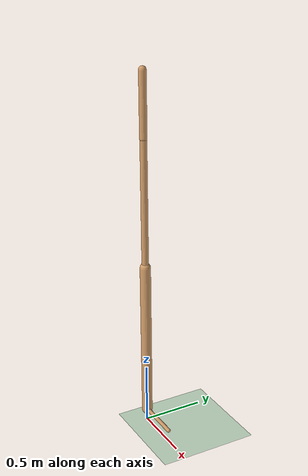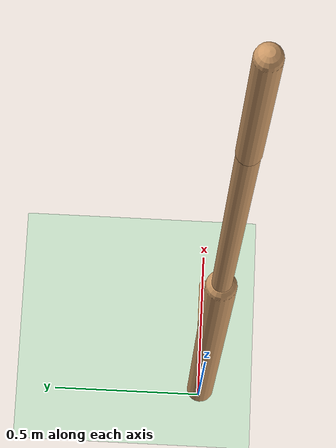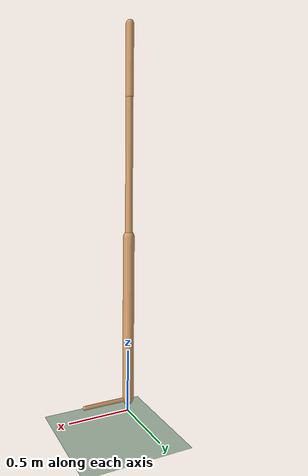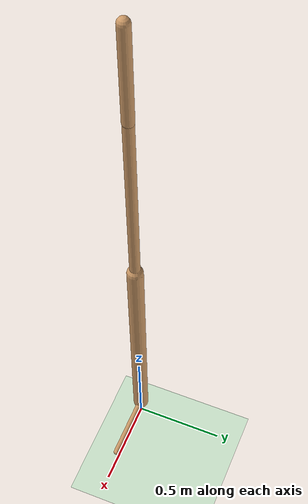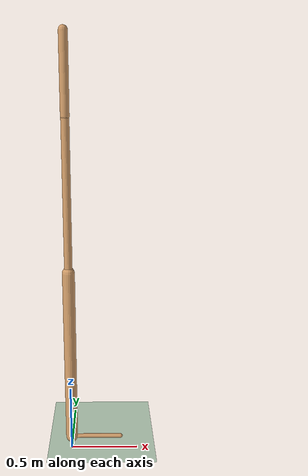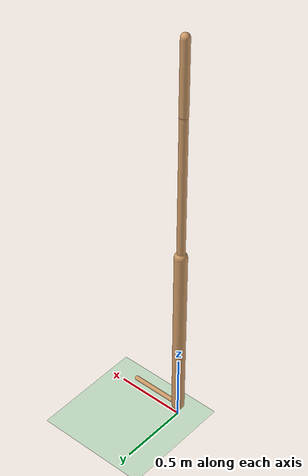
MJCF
<mujoco model="walker2d">
  <compiler angle="degree" inertiafromgeom="true" />
  <default>
    <joint armature="0.01" damping=".1" limited="true" />
    <geom conaffinity="0" condim="3" contype="1" density="1000" friction=".7 .1 .1" rgba="0.8 0.6 .4 1" />
  </default>
  <option integrator="RK4" timestep="0.002" />
  <worldbody>
    <light cutoff="100" diffuse="1 1 1" dir="-0 0 -1.3" directional="true" exponent="1" pos="0 0 1.3" specular=".1 .1 .1" />
    <geom conaffinity="1" condim="3" name="floor" pos="0 0 0" rgba="0.8 0.9 0.8 1" size="40 40 40" type="plane" material="MatPlane" />
    <body name="torso" pos="0 0 2.7215056478977204">
      <camera name="track" mode="trackcom" pos="0 -5 -1.25" xyaxes="1 0 0 0 0 1" />
      <joint armature="0" axis="1 0 0" damping="0" limited="false" name="rootx" pos="0 0 -1.25" stiffness="0" type="slide" />
      <joint armature="0" axis="0 0 1" damping="0" limited="false" name="rootz" pos="0 0 -1.25" ref="1.25" stiffness="0" type="slide" />
      <joint armature="0" axis="0 1 0" damping="0" limited="false" name="rooty" pos="0 0 0" stiffness="0" type="hinge" />
      <geom friction="0.9" name="torso_geom" size="0.030066639184951782 0.25541332364082336" type="capsule" />
      <body name="thigh" pos="0 0 -0.25541332364082336">
        <joint axis="0 -1 0" name="thigh_joint" pos="0 0 0" range="-150 0" type="hinge" />
        <site name="torso_thigh_site" pos="0 0 0" size="0.01" type="sphere" rgba="1 0 0 0.5" />
        <geom friction="0.9" pos="0 0 -0.5257032513618469" name="thigh_geom" size="0.028300227597355843 0.5257032513618469" type="capsule" />
        <body name="leg" pos="0 0 -1.7087494134902954">
          <joint axis="0 -1 0" name="leg_joint" pos="0 0 0.6573429107666016" range="-150 0" type="hinge" />
          <site name="thigh_leg_site" pos="0 0 0.25" size="0.01" type="sphere" rgba="1 0 0 0.5" />
          <geom friction="0.9" name="leg_geom" size="0.04406588897109032 0.6573429107666016" type="capsule" />
          <body name="foot" pos="0.37101447582244873 0 -0.7573429107666015">
            <joint axis="0 -1 0" name="foot_joint" pos="-0.37101447582244873 0 0.1" range="-45 45" type="hinge" />
            <site name="leg_foot_site" pos="-0.2 0 0.1" size="0.01" type="sphere" rgba="1 0 0 0.5" />
            <geom friction="0.9" pos="-0.18550723791122437 0 0.1" quat="0.70710678118654757 0 -0.70710678118654746 0" name="foot_geom" size="0.016082588583230972 0.18550723791122437" type="capsule" />
          </body>
        </body>
      </body>

      <body name="thigh_left" pos="0 0 -0.25541332364082336">
        <joint axis="0 -1 0" name="thigh_left_joint" pos="0 0 0" range="-150 0" type="hinge" />
        <site name="torso_thigh_left_site" pos="0 0 0" size="0.01" type="sphere" rgba="1 0 0 0.5" />
        <geom friction="0.9" name="thigh_left_geom" rgba=".7 .3 .6 1" size="0.028300227597355843 0.5257032513618469" pos="0 0 -0.5257032513618469" type="capsule" />
        <body name="leg_left" pos="0 0 -1.7087494134902954">
          <joint axis="0 -1 0" name="leg_left_joint" pos="0 0 0.6573429107666016" range="-150 0" type="hinge" />
          <site name="thigh_leg_left_site" pos="0 0 0.25" size="0.01" type="sphere" rgba="1 0 0 0.5" />
          <geom friction="0.9" name="leg_left_geom" rgba=".7 .3 .6 1" size="0.04406588897109032 0.6573429107666016" type="capsule" />
          <body name="foot_left" pos="0.37101447582244873 0 -0.7573429107666015">
            <joint axis="0 -1 0" name="foot_left_joint" pos="-0.37101447582244873 0 0.1" range="-45 45" type="hinge" />
            <site name="leg_foot_left_site" pos="-0.2 0 0.1" size="0.01" type="sphere" rgba="1 0 0 0.5" />
            <geom friction="1.9" name="foot_left_geom" rgba=".7 .3 .6 1" size="0.016082588583230972 0.18550723791122437" pos="-0.18550723791122437 0 0.1" type="capsule" quat="0.70710678118654757 0 -0.70710678118654746 0" />
          </body>
        </body>
      </body>
    </body>
  </worldbody>
  <actuator>

    <motor ctrllimited="true" ctrlrange="-1.0 1.0" gear="74.85106651113624" joint="thigh_joint" />
    <motor ctrllimited="true" ctrlrange="-1.0 1.0" gear="319.10753850798295" joint="leg_joint" />
    <motor ctrllimited="true" ctrlrange="-1.0 1.0" gear="13.328161995957194" joint="foot_joint" />
    <motor ctrllimited="true" ctrlrange="-1.0 1.0" gear="74.85106651113624" joint="thigh_left_joint" />
    <motor ctrllimited="true" ctrlrange="-1.0 1.0" gear="319.10753850798295" joint="leg_left_joint" />
    <motor ctrllimited="true" ctrlrange="-1.0 1.0" gear="13.328161995957194" joint="foot_left_joint" />

  </actuator>
    <asset>
        <texture type="skybox" builtin="gradient" rgb1=".4 .5 .6" rgb2="0 0 0" width="100" height="100" />
        <texture builtin="flat" height="1278" mark="cross" markrgb="1 1 1" name="texgeom" random="0.01" rgb1="0.8 0.6 0.4" rgb2="0.8 0.6 0.4" type="cube" width="127" />
        <texture builtin="checker" height="100" name="texplane" rgb1="0 0 0" rgb2="0.8 0.8 0.8" type="2d" width="100" />
        <material name="MatPlane" reflectance="0.5" shininess="1" specular="1" texrepeat="60 60" texture="texplane" />
        <material name="geom" texture="texgeom" texuniform="true" />
    </asset>

  <sensor>
    <force site="torso_thigh_site" name="torso_thigh_sensor" />
    <force site="thigh_leg_site" name="thigh_leg_sensor" />
    <force site="leg_foot_site" name="leg_foot_sensor" />
    <force site="torso_thigh_left_site" name="torso_thigh_left_sensor" />
    <force site="thigh_leg_left_site" name="thigh_leg_left_sensor" />
    <force site="leg_foot_left_site" name="leg_foot_left_sensor" />
  </sensor>
</mujoco>
